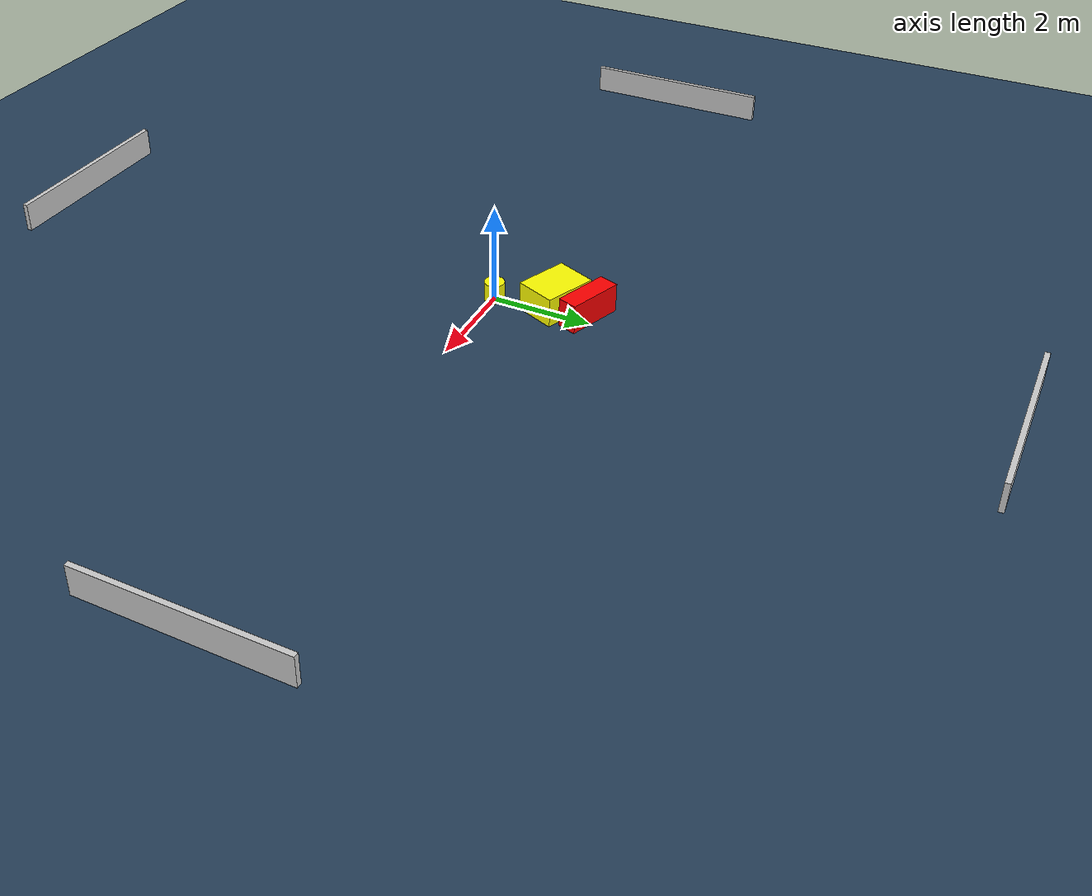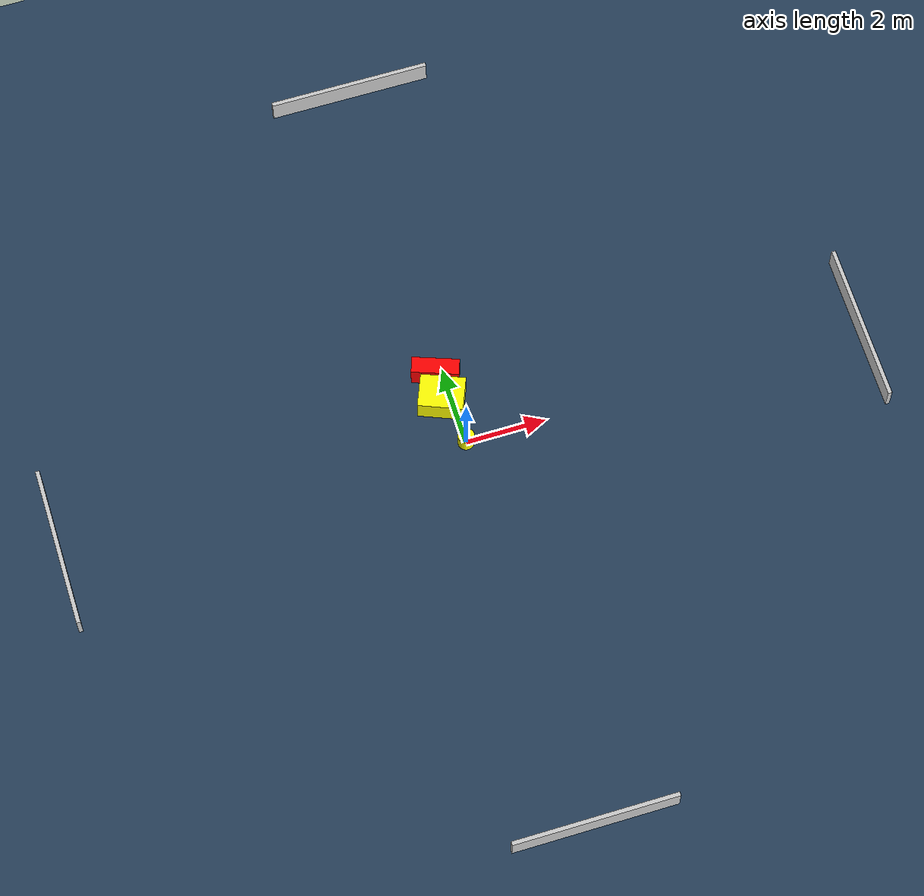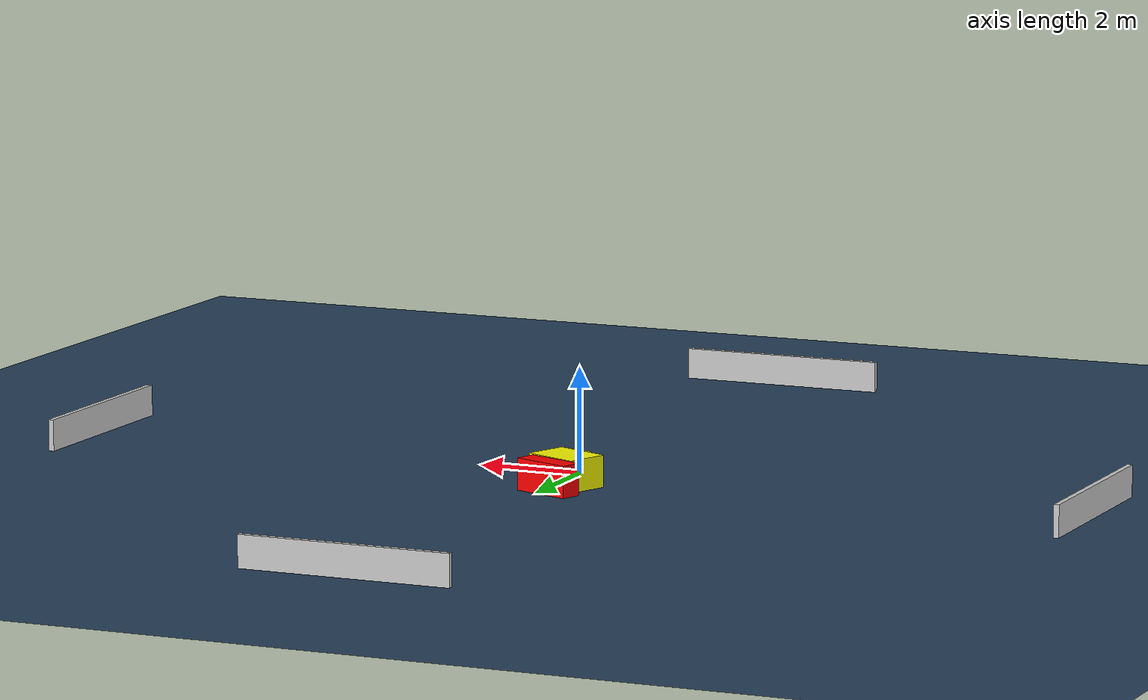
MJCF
<?xml version="1.0" ?>
<mujoco model="generated_environment">
  <option timestep="0.01" integrator="RK4" cone="elliptic"/>
  <default>
    <geom density="1"/>
  </default>
  <asset>
    <texture builtin="gradient" height="3072" name="skybox" rgb1="0.3 0.5 0.7" rgb2="0 0 0" type="skybox" width="512"/>
    <texture builtin="checker" height="300" name="groundplane" rgb1="0.2 0.3 0.4" rgb2="0.1 0.2 0.3" type="2d" width="300"/>
    <material name="groundplane" reflectance="0.2" texrepeat="5 5" texture="groundplane"/>
  </asset>
  <worldbody>
    <light dir="0 0 -1" directional="true" pos="0 0 1.5"/>
    <geom condim="3" friction="0.5 0.005 0.001" material="groundplane" name="floor" pos="0 0 0" size="0 0 0.05" type="plane"/>
    <body name="walls">
      <geom name="wall_1" condim="4" pos="-10.0 0.0 0.3" rgba="0.800000011920929 0.800000011920929 0.800000011920929 1.0" size="0.05 2.0 0.3" type="box"/>
      <geom name="wall_2" condim="4" pos="10.0 0.0 0.3" rgba="0.800000011920929 0.800000011920929 0.800000011920929 1.0" size="0.05 2.0 0.3" type="box"/>
      <geom name="wall_3" condim="4" pos="0.0 -10.0 0.3" rgba="0.800000011920929 0.800000011920929 0.800000011920929 1.0" size="2.0 0.05 0.3" type="box"/>
      <geom name="wall_4" condim="4" pos="0.0 10.0 0.3" rgba="0.800000011920929 0.800000011920929 0.800000011920929 1.0" size="2.0 0.05 0.3" type="box"/>
    </body>
    <body name="robot">
      <joint name="joint_x" type="slide" pos="0 0 0" axis="1 0 0"/>
      <joint name="joint_y" type="slide" pos="0 0 0" axis="0 1 0"/>
      <geom name="robot" type="cylinder" pos="0.0 0.0 0.2" size="0.2 0.2 0.0" mass="5.0" friction="1.0 0.005 0.0001" condim="4" rgba="1.0 1.0 0.0 1.0"/>
    </body>
    <body name="obstacle_1_movable">
      <geom name="obstacle_1_movable" condim="4" pos="-0.24659586309189882 1.1888795199636575 0.3" euler="0 0 67.72940835156047" friction="0.0 0.005 0.001" rgba="1.0 1.0 0.0 1.0" size="0.41843523604465777 0.5487661654947504 0.3" type="box" mass="0.1"/>
      <joint type="free"/>
    </body>
    <body name="obstacle_2_static">
      <geom name="obstacle_2_static" condim="4" pos="-0.1920079088564538 1.8911322900355365 0.3" euler="0 0 249.9399681647082" friction="0.0 0.005 0.001" rgba="1.0 0.0 0.0 1.0" size="0.20228346858024485 0.5781105623563187 0.3" type="box"/>
    </body>
  </worldbody>
  <actuator>
    <motor name="actuator_x" joint="joint_x" gear="1" ctrlrange="-1 1"/>
    <motor name="actuator_y" joint="joint_y" gear="1" ctrlrange="-1 1"/>
  </actuator>
</mujoco>
